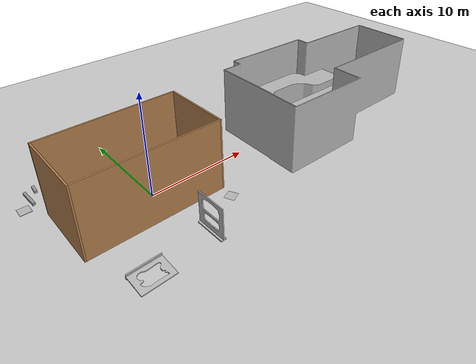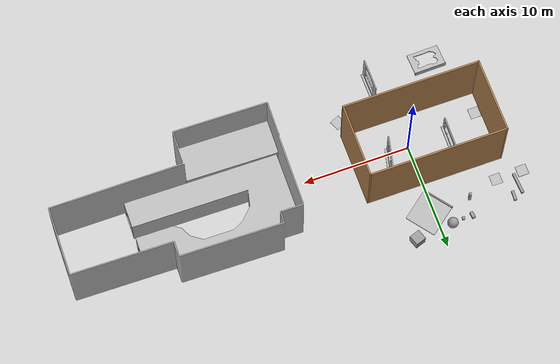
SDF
<sdf version="1.7">
 <world name="default">
  <light name="sun" type="directional">
   <pose>0 0 10 0 -0 0</pose>
   <diffuse>0.8 0.8 0.8 1</diffuse>
   <specular>0.2 0.2 0.2 1</specular>
   <attenuation>
    <range>1000</range>
    <constant>0.9</constant>
    <linear>0.01</linear>
    <quadratic>0.001</quadratic>
   </attenuation>
   <direction>-0.5 0.1 -0.9</direction>
   <spot><inner_angle>0</inner_angle><outer_angle>0</outer_angle><falloff>0</falloff></spot>
  </light>
  <model name="ground_plane">
   <static>1</static>
   <link name="link">
    <collision name="collision">
     <geometry><plane><normal>0 0 1</normal><size>100 100</size></plane></geometry>
     <surface><friction><ode><mu>100</mu><mu2>50</mu2></ode></friction></surface>
    </collision>
    <visual name="visual">
     <cast_shadows>0</cast_shadows>
     <geometry><plane><normal>0 0 1</normal><size>100 100</size></plane></geometry>
     <material>
      <script><uri>file://media/materials/scripts/gazebo.material</uri><name>Gazebo/Grey</name></script>
     </material>
    </visual>
   </link>
  </model>
  <gravity>0 0 -9.8</gravity>
  <magnetic_field>6e-06 2.3e-05 -4.2e-05</magnetic_field>
  <atmosphere type="adiabatic"/>
  <physics name="default_physics" default="0" type="ode">
   <max_step_size>0.001</max_step_size>
   <real_time_factor>1</real_time_factor>
   <real_time_update_rate>1000</real_time_update_rate>
  </physics>
  <scene><ambient>0.4 0.4 0.4 1</ambient><background>0.7 0.7 0.7 1</background><shadows>1</shadows></scene>
  <spherical_coordinates>
   <surface_model>EARTH_WGS84</surface_model>
   <latitude_deg>0</latitude_deg>
   <longitude_deg>0</longitude_deg>
   <elevation>0</elevation>
   <heading_deg>0</heading_deg>
  </spherical_coordinates>
  <model name="h_1">
   <link name="link">
    <pose>0 0 0.115 0 -0 0</pose>
    <inertial>
     <mass>1000</mass>
     <inertia><ixx>1000</ixx><ixy>0</ixy><ixz>0</ixz><iyy>1000</iyy><iyz>0</iyz><izz>1000</izz></inertia>
    </inertial>
    <collision name="collision">
     <geometry><box><size>0.496 0.496 0.01</size></box></geometry>
     <surface>
      <contact>
       <poissons_ratio>0.347</poissons_ratio>
       <elastic_modulus>8.8e+09</elastic_modulus>
       <ode><kp>100000</kp><kd>100</kd><max_vel>100</max_vel><min_depth>0.001</min_depth></ode>
      </contact>
      <friction>
       <torsional>
        <coefficient>1</coefficient>
        <use_patch_radius>0</use_patch_radius>
        <surface_radius>0.01</surface_radius>
       </torsional>
      </friction>
     </surface>
    </collision>
    <visual name="visual">
     <geometry><box><size>1 1 0.05</size></box></geometry>
     <material>
      <script>
       <uri>model://H/materials/scripts</uri>
       <uri>model://H/materials/textures</uri>
       <name>Mark/Diffuse2</name>
      </script>
     </material>
    </visual>
   </link>
   <pose>-8.95845 5.4829 -0.135259 0 -0 0</pose>
  </model>
  <model name="h_1_clone">
   <link name="link">
    <pose>0 0 0.115 0 -0 0</pose>
    <inertial>
     <mass>1000</mass>
     <inertia><ixx>1000</ixx><ixy>0</ixy><ixz>0</ixz><iyy>1000</iyy><iyz>0</iyz><izz>1000</izz></inertia>
    </inertial>
    <collision name="collision">
     <geometry><box><size>0.496 0.496 0.01</size></box></geometry>
     <surface>
      <contact>
       <poissons_ratio>0.347</poissons_ratio>
       <elastic_modulus>8.8e+09</elastic_modulus>
       <ode><kp>100000</kp><kd>100</kd><max_vel>100</max_vel><min_depth>0.001</min_depth></ode>
      </contact>
      <friction>
       <torsional>
        <coefficient>1</coefficient>
        <use_patch_radius>0</use_patch_radius>
        <surface_radius>0.01</surface_radius>
       </torsional>
      </friction>
     </surface>
    </collision>
    <visual name="visual">
     <geometry><box><size>1 1 0.05</size></box></geometry>
     <material>
      <script>
       <uri>model://H/materials/scripts</uri>
       <uri>model://H/materials/textures</uri>
       <name>Mark/Diffuse2</name>
      </script>
     </material>
    </visual>
   </link>
   <pose>0.183791 5.48947 -0.135259 0 -0 0.001493</pose>
  </model>
  <model name="zhuangjiache_0">
   <link name="link">
    <pose>0 0 0.115 0 -0 0</pose>
    <inertial>
     <mass>3.39</mass>
     <inertia><ixx>0.58</ixx><ixy>0</ixy><ixz>0</ixz><iyy>0.58</iyy><iyz>0</iyz><izz>0.19</izz></inertia>
    </inertial>
    <collision name="collision"><geometry><box><size>0.496 0.496 0.01</size></box></geometry></collision>
    <visual name="visual">
     <geometry><box><size>1 1 0.005</size></box></geometry>
     <material>
      <script>
       <uri>model://zhuangjiache/materials/scripts</uri>
       <uri>model://zhuangjiache/materials/textures</uri>
       <name>Mark/Diffuse6</name>
      </script>
     </material>
    </visual>
   </link>
   <pose>-6.96968 -1.24631 -0.11 0 -0 0.002874</pose>
  </model>
  <model name="zhangpeng_0">
   <link name="link">
    <pose>0 0 0.115 0 -0 0</pose>
    <inertial>
     <mass>3.39</mass>
     <inertia><ixx>0.58</ixx><ixy>0</ixy><ixz>0</ixz><iyy>0.58</iyy><iyz>0</iyz><izz>0.19</izz></inertia>
    </inertial>
    <collision name="collision"><geometry><box><size>0.496 0.496 0.005</size></box></geometry></collision>
    <visual name="visual">
     <geometry><box><size>1 1 0.005</size></box></geometry>
     <material>
      <script>
       <uri>model://zhangpeng/materials/scripts</uri>
       <uri>model://zhangpeng/materials/textures</uri>
       <name>Mark/Diffuse5</name>
      </script>
     </material>
    </visual>
   </link>
   <pose>5.10524 -4.53401 0.1175 3.14159 0 -1.1365</pose>
  </model>
  <model name="tanke_0">
   <link name="link">
    <pose>0 0 0.115 0 -0 0</pose>
    <inertial>
     <mass>3.39</mass>
     <inertia><ixx>0.58</ixx><ixy>0</ixy><ixz>0</ixz><iyy>0.58</iyy><iyz>0</iyz><izz>0.19</izz></inertia>
    </inertial>
    <collision name="collision"><geometry><box><size>0.496 0.496 0.005</size></box></geometry></collision>
    <visual name="visual">
     <geometry><box><size>1 1 0.005</size></box></geometry>
     <material>
      <script>
       <uri>model://tanke/materials/scripts</uri>
       <uri>model://tanke/materials/textures</uri>
       <name>Mark/Diffuse4</name>
      </script>
     </material>
    </visual>
   </link>
   <pose>-6.41052 5.49151 -0.1125 0 -0 -0.000981</pose>
  </model>
  <model name="unit_box_1">
   <link name="link">
    <inertial>
     <mass>1</mass>
     <inertia>
      <ixx>0.166667</ixx>
      <ixy>0</ixy>
      <ixz>0</ixz>
      <iyy>0.166667</iyy>
      <iyz>0</iyz>
      <izz>0.166667</izz>
     </inertia>
    </inertial>
    <pose>0.033703 0.185129 -0 0 -0 0</pose>
    <visual name="visual">
     <geometry><box><size>0.25 0.25 1</size></box></geometry>
     <material>
      <lighting>1</lighting>
      <script><uri>file://media/materials/scripts/gazebo.material</uri><name>Gazebo/Grey</name></script>
      <shader type="pixel"><normal_map>__default__</normal_map></shader>
      <ambient>0.3 0.3 0.3 1</ambient>
      <diffuse>0.7 0.7 0.7 1</diffuse>
      <specular>0.01 0.01 0.01 1</specular>
      <emissive>0 0 0 1</emissive>
     </material>
    </visual>
    <collision name="collision">
     <geometry><box><size>0.25 0.25 1</size></box></geometry>
     <surface>
      <friction>
       <ode><mu>1</mu><mu2>1</mu2><fdir1>0 0 0</fdir1><slip1>0</slip1><slip2>0</slip2></ode>
       <torsional>
        <coefficient>1</coefficient>
        <patch_radius>0</patch_radius>
        <surface_radius>0</surface_radius>
        <use_patch_radius>1</use_patch_radius>
        <ode><slip>0</slip></ode>
       </torsional>
      </friction>
      <bounce><restitution_coefficient>0</restitution_coefficient><threshold>1e+06</threshold></bounce>
      <contact>
       <collide_without_contact>0</collide_without_contact>
       <collide_without_contact_bitmask>1</collide_without_contact_bitmask>
       <collide_bitmask>1</collide_bitmask>
       <ode>
        <soft_cfm>0</soft_cfm>
        <soft_erp>0.2</soft_erp>
        <kp>1e+13</kp>
        <kd>1</kd>
        <max_vel>0.01</max_vel>
        <min_depth>0</min_depth>
       </ode>
       <bullet>
        <split_impulse>1</split_impulse>
        <split_impulse_penetration_threshold>-0.01</split_impulse_penetration_threshold>
        <soft_cfm>0</soft_cfm>
        <soft_erp>0.2</soft_erp>
        <kp>1e+13</kp>
        <kd>1</kd>
       </bullet>
      </contact>
     </surface>
    </collision>
   </link>
   <static>0</static>
   <pose>-2.07809 1.74633 0.310129 -1.5708 0 0.113982</pose>
  </model>
  <model name="unit_box_0.6">
   <link name="link">
    <inertial>
     <mass>1</mass>
     <inertia>
      <ixx>0.166667</ixx>
      <ixy>0</ixy>
      <ixz>0</ixz>
      <iyy>0.166667</iyy>
      <iyz>0</iyz>
      <izz>0.166667</izz>
     </inertia>
    </inertial>
    <pose>0.033703 0.185129 -0 0 -0 0</pose>
    <visual name="visual">
     <geometry><box><size>0.3 0.3 0.6</size></box></geometry>
     <material>
      <lighting>1</lighting>
      <script><uri>file://media/materials/scripts/gazebo.material</uri><name>Gazebo/Grey</name></script>
      <shader type="pixel"><normal_map>__default__</normal_map></shader>
      <ambient>0.3 0.3 0.3 1</ambient>
      <diffuse>0.7 0.7 0.7 1</diffuse>
      <specular>0.01 0.01 0.01 1</specular>
      <emissive>0 0 0 1</emissive>
     </material>
    </visual>
    <collision name="collision">
     <geometry><box><size>0.3 0.3 0.6</size></box></geometry>
     <surface>
      <friction>
       <ode><mu>1</mu><mu2>1</mu2><fdir1>0 0 0</fdir1><slip1>0</slip1><slip2>0</slip2></ode>
       <torsional>
        <coefficient>1</coefficient>
        <patch_radius>0</patch_radius>
        <surface_radius>0</surface_radius>
        <use_patch_radius>1</use_patch_radius>
        <ode><slip>0</slip></ode>
       </torsional>
      </friction>
      <bounce><restitution_coefficient>0</restitution_coefficient><threshold>1e+06</threshold></bounce>
      <contact>
       <collide_without_contact>0</collide_without_contact>
       <collide_without_contact_bitmask>1</collide_without_contact_bitmask>
       <collide_bitmask>1</collide_bitmask>
       <ode>
        <soft_cfm>0</soft_cfm>
        <soft_erp>0.2</soft_erp>
        <kp>1e+13</kp>
        <kd>1</kd>
        <max_vel>0.01</max_vel>
        <min_depth>0</min_depth>
       </ode>
       <bullet>
        <split_impulse>1</split_impulse>
        <split_impulse_penetration_threshold>-0.01</split_impulse_penetration_threshold>
        <soft_cfm>0</soft_cfm>
        <soft_erp>0.2</soft_erp>
        <kp>1e+13</kp>
        <kd>1</kd>
       </bullet>
      </contact>
     </surface>
    </collision>
   </link>
   <static>0</static>
   <pose>-3.32439 8.01435 0.183703 -1.6882 1.57079 3.14159</pose>
  </model>
  <model name="unit_box_0.25">
   <link name="link">
    <inertial>
     <mass>1</mass>
     <inertia>
      <ixx>0.166667</ixx>
      <ixy>0</ixy>
      <ixz>0</ixz>
      <iyy>0.166667</iyy>
      <iyz>0</iyz>
      <izz>0.166667</izz>
     </inertia>
    </inertial>
    <pose>0.033703 0.185129 -0 0 -0 0</pose>
    <visual name="visual">
     <geometry><box><size>0.25 0.25 0.25</size></box></geometry>
     <material>
      <lighting>1</lighting>
      <script><uri>file://media/materials/scripts/gazebo.material</uri><name>Gazebo/Grey</name></script>
      <shader type="pixel"><normal_map>__default__</normal_map></shader>
      <ambient>0.3 0.3 0.3 1</ambient>
      <diffuse>0.7 0.7 0.7 1</diffuse>
      <specular>0.01 0.01 0.01 1</specular>
      <emissive>0 0 0 1</emissive>
     </material>
    </visual>
    <collision name="collision">
     <geometry><box><size>0.25 0.25 0.25</size></box></geometry>
     <surface>
      <friction>
       <ode><mu>1</mu><mu2>1</mu2><fdir1>0 0 0</fdir1><slip1>0</slip1><slip2>0</slip2></ode>
       <torsional>
        <coefficient>1</coefficient>
        <patch_radius>0</patch_radius>
        <surface_radius>0</surface_radius>
        <use_patch_radius>1</use_patch_radius>
        <ode><slip>0</slip></ode>
       </torsional>
      </friction>
      <bounce><restitution_coefficient>0</restitution_coefficient><threshold>1e+06</threshold></bounce>
      <contact>
       <collide_without_contact>0</collide_without_contact>
       <collide_without_contact_bitmask>1</collide_without_contact_bitmask>
       <collide_bitmask>1</collide_bitmask>
       <ode>
        <soft_cfm>0</soft_cfm>
        <soft_erp>0.2</soft_erp>
        <kp>1e+13</kp>
        <kd>1</kd>
        <max_vel>0.01</max_vel>
        <min_depth>0</min_depth>
       </ode>
       <bullet>
        <split_impulse>1</split_impulse>
        <split_impulse_penetration_threshold>-0.01</split_impulse_penetration_threshold>
        <soft_cfm>0</soft_cfm>
        <soft_erp>0.2</soft_erp>
        <kp>1e+13</kp>
        <kd>1</kd>
       </bullet>
      </contact>
     </surface>
    </collision>
   </link>
   <static>0</static>
   <pose>-2.33176 7.86057 0.125 0 -0 -0.156402</pose>
  </model>
  <model name="unit_box_2">
   <link name="link">
    <inertial>
     <mass>1</mass>
     <inertia>
      <ixx>0.166667</ixx>
      <ixy>0</ixy>
      <ixz>0</ixz>
      <iyy>0.166667</iyy>
      <iyz>0</iyz>
      <izz>0.166667</izz>
     </inertia>
    </inertial>
    <pose>0.033703 0.185129 -0 0 -0 0</pose>
    <visual name="visual">
     <geometry><box><size>0.25 0.25 2</size></box></geometry>
     <material>
      <lighting>1</lighting>
      <script><uri>file://media/materials/scripts/gazebo.material</uri><name>Gazebo/Grey</name></script>
      <shader type="pixel"><normal_map>__default__</normal_map></shader>
      <ambient>0.3 0.3 0.3 1</ambient>
      <diffuse>0.7 0.7 0.7 1</diffuse>
      <specular>0.01 0.01 0.01 1</specular>
      <emissive>0 0 0 1</emissive>
     </material>
    </visual>
    <collision name="collision">
     <geometry><box><size>0.25 0.25 2</size></box></geometry>
     <surface>
      <friction>
       <ode><mu>1</mu><mu2>1</mu2><fdir1>0 0 0</fdir1><slip1>0</slip1><slip2>0</slip2></ode>
       <torsional>
        <coefficient>1</coefficient>
        <patch_radius>0</patch_radius>
        <surface_radius>0</surface_radius>
        <use_patch_radius>1</use_patch_radius>
        <ode><slip>0</slip></ode>
       </torsional>
      </friction>
      <bounce><restitution_coefficient>0</restitution_coefficient><threshold>1e+06</threshold></bounce>
      <contact>
       <collide_without_contact>0</collide_without_contact>
       <collide_without_contact_bitmask>1</collide_without_contact_bitmask>
       <collide_bitmask>1</collide_bitmask>
       <ode>
        <soft_cfm>0</soft_cfm>
        <soft_erp>0.2</soft_erp>
        <kp>1e+13</kp>
        <kd>1</kd>
        <max_vel>0.01</max_vel>
        <min_depth>0</min_depth>
       </ode>
       <bullet>
        <split_impulse>1</split_impulse>
        <split_impulse_penetration_threshold>-0.01</split_impulse_penetration_threshold>
        <soft_cfm>0</soft_cfm>
        <soft_erp>0.2</soft_erp>
        <kp>1e+13</kp>
        <kd>1</kd>
       </bullet>
      </contact>
     </surface>
    </collision>
   </link>
   <static>0</static>
   <pose>-7.9507 6.58267 0.158643 0.002654 1.57074 1.63369</pose>
  </model>
  <model name="unit_box_0.9">
   <link name="link">
    <inertial>
     <mass>1</mass>
     <inertia>
      <ixx>0.166667</ixx>
      <ixy>0</ixy>
      <ixz>0</ixz>
      <iyy>0.166667</iyy>
      <iyz>0</iyz>
      <izz>0.166667</izz>
     </inertia>
    </inertial>
    <pose>0.033703 0.185129 -0 0 -0 0</pose>
    <visual name="visual">
     <geometry><box><size>0.25 0.25 0.9</size></box></geometry>
     <material>
      <lighting>1</lighting>
      <script><uri>file://media/materials/scripts/gazebo.material</uri><name>Gazebo/Grey</name></script>
      <shader type="pixel"><normal_map>__default__</normal_map></shader>
      <ambient>0.3 0.3 0.3 1</ambient>
      <diffuse>0.7 0.7 0.7 1</diffuse>
      <specular>0.01 0.01 0.01 1</specular>
      <emissive>0 0 0 1</emissive>
     </material>
    </visual>
    <collision name="collision">
     <geometry><box><size>0.25 0.25 0.9</size></box></geometry>
     <surface>
      <friction>
       <ode><mu>1</mu><mu2>1</mu2><fdir1>0 0 0</fdir1><slip1>0</slip1><slip2>0</slip2></ode>
       <torsional>
        <coefficient>1</coefficient>
        <patch_radius>0</patch_radius>
        <surface_radius>0</surface_radius>
        <use_patch_radius>1</use_patch_radius>
        <ode><slip>0</slip></ode>
       </torsional>
      </friction>
      <bounce><restitution_coefficient>0</restitution_coefficient><threshold>1e+06</threshold></bounce>
      <contact>
       <collide_without_contact>0</collide_without_contact>
       <collide_without_contact_bitmask>1</collide_without_contact_bitmask>
       <collide_bitmask>1</collide_bitmask>
       <ode>
        <soft_cfm>0</soft_cfm>
        <soft_erp>0.2</soft_erp>
        <kp>1e+13</kp>
        <kd>1</kd>
        <max_vel>0.01</max_vel>
        <min_depth>0</min_depth>
       </ode>
       <bullet>
        <split_impulse>1</split_impulse>
        <split_impulse_penetration_threshold>-0.01</split_impulse_penetration_threshold>
        <soft_cfm>0</soft_cfm>
        <soft_erp>0.2</soft_erp>
        <kp>1e+13</kp>
        <kd>1</kd>
       </bullet>
      </contact>
     </surface>
    </collision>
   </link>
   <static>0</static>
   <pose>-7.38119 7.56237 0.310129 -1.5708 -0 -0.065155</pose>
  </model>
  <model name="unit_box_1.2">
   <link name="link">
    <inertial>
     <mass>1</mass>
     <inertia>
      <ixx>0.166667</ixx>
      <ixy>0</ixy>
      <ixz>0</ixz>
      <iyy>0.166667</iyy>
      <iyz>0</iyz>
      <izz>0.166667</izz>
     </inertia>
    </inertial>
    <pose>0.033703 0.185129 -0 0 -0 0</pose>
    <visual name="visual">
     <geometry><box><size>0.25 0.25 1.2</size></box></geometry>
     <material>
      <lighting>1</lighting>
      <script><uri>file://media/materials/scripts/gazebo.material</uri><name>Gazebo/Grey</name></script>
      <shader type="pixel"><normal_map>__default__</normal_map></shader>
      <ambient>0.3 0.3 0.3 1</ambient>
      <diffuse>0.7 0.7 0.7 1</diffuse>
      <specular>0.01 0.01 0.01 1</specular>
      <emissive>0 0 0 1</emissive>
     </material>
    </visual>
    <collision name="collision">
     <geometry><box><size>0.25 0.25 1.2</size></box></geometry>
     <surface>
      <friction>
       <ode><mu>1</mu><mu2>1</mu2><fdir1>0 0 0</fdir1><slip1>0</slip1><slip2>0</slip2></ode>
       <torsional>
        <coefficient>1</coefficient>
        <patch_radius>0</patch_radius>
        <surface_radius>0</surface_radius>
        <use_patch_radius>1</use_patch_radius>
        <ode><slip>0</slip></ode>
       </torsional>
      </friction>
      <bounce><restitution_coefficient>0</restitution_coefficient><threshold>1e+06</threshold></bounce>
      <contact>
       <collide_without_contact>0</collide_without_contact>
       <collide_without_contact_bitmask>1</collide_without_contact_bitmask>
       <collide_bitmask>1</collide_bitmask>
       <ode>
        <soft_cfm>0</soft_cfm>
        <soft_erp>0.2</soft_erp>
        <kp>1e+13</kp>
        <kd>1</kd>
        <max_vel>0.01</max_vel>
        <min_depth>0</min_depth>
       </ode>
       <bullet>
        <split_impulse>1</split_impulse>
        <split_impulse_penetration_threshold>-0.01</split_impulse_penetration_threshold>
        <soft_cfm>0</soft_cfm>
        <soft_erp>0.2</soft_erp>
        <kp>1e+13</kp>
        <kd>1</kd>
       </bullet>
      </contact>
     </surface>
    </collision>
   </link>
   <static>0</static>
   <pose>-3.58847 6.26603 0.599999 2e-06 -1e-06 -0.403849</pose>
  </model>
  <model name="unit_box">
   <pose>2.39384 8.61323 0.5 0 -0 0.329105</pose>
   <link name="link">
    <inertial>
     <mass>1</mass>
     <inertia>
      <ixx>0.166667</ixx>
      <ixy>0</ixy>
      <ixz>0</ixz>
      <iyy>0.166667</iyy>
      <iyz>0</iyz>
      <izz>0.166667</izz>
     </inertia>
    </inertial>
    <collision name="collision"><geometry><box><size>1 1 1</size></box></geometry></collision>
    <visual name="visual">
     <geometry><box><size>1 1 1</size></box></geometry>
     <material>
      <script><name>Gazebo/Grey</name><uri>file://media/materials/scripts/gazebo.material</uri></script>
     </material>
    </visual>
   </link>
  </model>
  <model name="unit_sphere">
   <pose>-1.15301 8.22042 0.5 -0.009023 -0.033424 0.000236</pose>
   <link name="link">
    <inertial>
     <mass>1</mass>
     <inertia><ixx>0.1</ixx><ixy>0</ixy><ixz>0</ixz><iyy>0.1</iyy><iyz>0</iyz><izz>0.1</izz></inertia>
    </inertial>
    <collision name="collision"><geometry><sphere><radius>0.5</radius></sphere></geometry></collision>
    <visual name="visual">
     <geometry><sphere><radius>0.5</radius></sphere></geometry>
     <material>
      <script><name>Gazebo/Grey</name><uri>file://media/materials/scripts/gazebo.material</uri></script>
     </material>
    </visual>
   </link>
  </model>
  <light name="user_point_light_0" type="point">
   <pose>-7.02428 -0.880974 1 0 -0 0</pose>
   <diffuse>0.5 0.5 0.5 1</diffuse>
   <specular>0.1 0.1 0.1 1</specular>
   <attenuation>
    <range>20</range>
    <constant>0.5</constant>
    <linear>0.01</linear>
    <quadratic>0.001</quadratic>
   </attenuation>
   <cast_shadows>0</cast_shadows>
   <direction>0 0 -1</direction>
   <spot><inner_angle>0</inner_angle><outer_angle>0</outer_angle><falloff>0</falloff></spot>
  </light>
  <model name="forest_wall_4">
   <link name="base_link">
    <inertial>
     <pose>-0.029337 -0.424347 -1e-06 0 -0 0</pose>
     <mass>647.061</mass>
     <inertia>
      <ixx>742.831</ixx>
      <ixy>5.41938</ixy>
      <ixz>6.93604e-05</ixz>
      <iyy>660.845</iyy>
      <iyz>-2.85535e-06</iyz>
      <izz>1396.59</izz>
     </inertia>
    </inertial>
    <collision name="base_link_collision">
     <geometry>
      <mesh>
       <scale>1 1 1</scale>
       <uri>/home/emnavi/X280_SIM/src/emnv_scene/urdf_models/emnv_scene/urdf_models/forest_wall_4/meshes/forest_wall_4.STL</uri>
      </mesh>
     </geometry>
    </collision>
    <visual name="base_link_visual">
     <geometry>
      <mesh>
       <scale>1 1 1</scale>
       <uri>/home/emnavi/X280_SIM/src/emnv_scene/urdf_models/emnv_scene/urdf_models/forest_wall_4/meshes/forest_wall_4.STL</uri>
      </mesh>
     </geometry>
    </visual>
   </link>
   <pose>1.23568 -6.80695 1.60323 1.5708 -2e-06 -1.56513</pose>
  </model>
  <model name="forest_wall_2">
   <link name="base_link">
    <inertial>
     <pose>0.016227 -0.321553 -1e-06 0 -0 0</pose>
     <mass>518.159</mass>
     <inertia>
      <ixx>286.486</ixx>
      <ixy>0.468665</ixy>
      <ixz>-0.000501762</ixz>
      <iyy>499.819</iyy>
      <iyz>-2.32059e-05</iyz>
      <izz>779.442</izz>
     </inertia>
    </inertial>
    <collision name="base_link_collision">
     <geometry>
      <mesh>
       <scale>1 1 1</scale>
       <uri>/home/emnavi/X280_SIM/src/emnv_scene/urdf_models/emnv_scene/urdf_models/forest_wall_2/meshes/forest_wall_2.STL</uri>
      </mesh>
     </geometry>
    </collision>
    <visual name="base_link_visual">
     <geometry>
      <mesh>
       <scale>1 1 1</scale>
       <uri>/home/emnavi/X280_SIM/src/emnv_scene/urdf_models/emnv_scene/urdf_models/forest_wall_2/meshes/forest_wall_2.STL</uri>
      </mesh>
     </geometry>
    </visual>
   </link>
   <pose>-4.69144 -7.67155 0.147842 -3.04192 4e-06 0.019172</pose>
  </model>
  <model name="forest_wall_3">
   <link name="base_link">
    <inertial>
     <pose>0.010164 -0.34575 2e-06 0 -0 0</pose>
     <mass>740.131</mass>
     <inertia>
      <ixx>822.275</ixx>
      <ixy>-11.652</ixy>
      <ixz>-0.00103137</ixz>
      <iyy>718.053</iyy>
      <iyz>-0.000275443</iyz>
      <izz>1533.13</izz>
     </inertia>
    </inertial>
    <collision name="base_link_collision">
     <geometry>
      <mesh>
       <scale>1 1 1</scale>
       <uri>/home/emnavi/X280_SIM/src/emnv_scene/urdf_models/emnv_scene/urdf_models/forest_wall_3/meshes/forest_wall_3.STL</uri>
      </mesh>
     </geometry>
    </collision>
    <visual name="base_link_visual">
     <geometry>
      <mesh>
       <scale>1 1 1</scale>
       <uri>/home/emnavi/X280_SIM/src/emnv_scene/urdf_models/emnv_scene/urdf_models/forest_wall_3/meshes/forest_wall_3.STL</uri>
      </mesh>
     </geometry>
    </visual>
   </link>
   <pose>2.1275 0.844944 1.59488 1.5708 2e-06 1.34359</pose>
  </model>
  <model name="forest_wall_5">
   <link name="base_link">
    <inertial>
     <pose>-0 0 -0.221429 0 -0 0</pose>
     <mass>1050</mass>
     <inertia>
      <ixx>987.893</ixx>
      <ixy>6.80012e-15</ixy>
      <ixz>1.6007e-13</ixz>
      <iyy>1771.52</iyy>
      <iyz>-3.10446e-14</iyz>
      <izz>791.375</izz>
     </inertia>
    </inertial>
    <collision name="base_link_collision">
     <geometry>
      <mesh>
       <scale>1 1 1</scale>
       <uri>/home/emnavi/X280_SIM/src/emnv_scene/urdf_models/emnv_scene/urdf_models/forest_wall_5/meshes/forest_wall_5.STL</uri>
      </mesh>
     </geometry>
    </collision>
    <visual name="base_link_visual">
     <geometry>
      <mesh>
       <scale>1 1 1</scale>
       <uri>/home/emnavi/X280_SIM/src/emnv_scene/urdf_models/emnv_scene/urdf_models/forest_wall_5/meshes/forest_wall_5.STL</uri>
      </mesh>
     </geometry>
    </visual>
   </link>
   <pose>0.486142 6.53493 0.149662 -1.63736 -0 -0.92011</pose>
  </model>
  <model name="forest_wall_1">
   <link name="base_link">
    <inertial>
     <pose>0.016227 -0.321553 -1e-06 0 -0 0</pose>
     <mass>518.159</mass>
     <inertia>
      <ixx>286.486</ixx>
      <ixy>0.468665</ixy>
      <ixz>-0.000501762</ixz>
      <iyy>499.819</iyy>
      <iyz>-2.32059e-05</iyz>
      <izz>779.442</izz>
     </inertia>
    </inertial>
    <collision name="base_link_collision">
     <geometry>
      <mesh>
       <scale>1 1 1</scale>
       <uri>/home/emnavi/X280_SIM/src/emnv_scene/urdf_models/emnv_scene/urdf_models/forest_wall_1/meshes/forest_wall_1.STL</uri>
      </mesh>
     </geometry>
    </collision>
    <visual name="base_link_visual">
     <geometry>
      <mesh>
       <scale>1 1 1</scale>
       <uri>/home/emnavi/X280_SIM/src/emnv_scene/urdf_models/emnv_scene/urdf_models/forest_wall_1/meshes/forest_wall_1.STL</uri>
      </mesh>
     </geometry>
    </visual>
   </link>
   <pose>-3.78041 0.535957 1.08934 1.5708 -0 1.54771</pose>
  </model>
  <model name="forst_tju_walls">
   <link name="Wall_1">
    <collision name="Wall_1_Collision">
     <geometry><box><size>7 0.15 7</size></box></geometry>
     <pose>0 0 3.5 0 -0 0</pose>
    </collision>
    <visual name="Wall_1_Visual">
     <pose>0 0 3.5 0 -0 0</pose>
     <geometry><box><size>7 0.15 7</size></box></geometry>
     <material>
      <script><uri>file://media/materials/scripts/gazebo.material</uri><name>Gazebo/Wood</name></script>
      <ambient>1 1 1 1</ambient>
     </material>
     <meta><layer>0</layer></meta>
    </visual>
    <pose>-7.5815 0.246991 0 0 -0 -1.5708</pose>
   </link>
   <link name="Wall_3">
    <collision name="Wall_3_Collision">
     <geometry><box><size>13 0.15 7</size></box></geometry>
     <pose>0 0 3.5 0 -0 0</pose>
    </collision>
    <visual name="Wall_3_Visual">
     <pose>0 0 3.5 0 -0 0</pose>
     <geometry><box><size>13 0.15 7</size></box></geometry>
     <material>
      <script><uri>file://media/materials/scripts/gazebo.material</uri><name>Gazebo/Wood</name></script>
      <ambient>1 1 1 1</ambient>
     </material>
     <meta><layer>0</layer></meta>
    </visual>
    <pose>-1.1565 -3.17801 0 0 -0 0</pose>
   </link>
   <link name="Wall_5">
    <collision name="Wall_5_Collision">
     <geometry><box><size>13 0.15 7</size></box></geometry>
     <pose>0 0 3.5 0 -0 0</pose>
    </collision>
    <visual name="Wall_5_Visual">
     <pose>0 0 3.5 0 -0 0</pose>
     <geometry><box><size>13 0.15 7</size></box></geometry>
     <material>
      <script><uri>file://media/materials/scripts/gazebo.material</uri><name>Gazebo/Wood</name></script>
      <ambient>1 1 1 1</ambient>
     </material>
     <meta><layer>0</layer></meta>
    </visual>
    <pose>-1.1565 3.67199 0 0 -0 0</pose>
   </link>
   <link name="Wall_7">
    <collision name="Wall_7_Collision">
     <geometry><box><size>7.00004 0.15 7</size></box></geometry>
     <pose>0 0 3.5 0 -0 0</pose>
    </collision>
    <visual name="Wall_7_Visual">
     <pose>0 0 3.5 0 -0 0</pose>
     <geometry><box><size>7.00004 0.15 7</size></box></geometry>
     <material>
      <script><uri>file://media/materials/scripts/gazebo.material</uri><name>Gazebo/Wood</name></script>
      <ambient>1 1 1 1</ambient>
     </material>
     <meta><layer>0</layer></meta>
    </visual>
    <pose>5.2685 0.246991 0 0 -0 -1.5708</pose>
   </link>
   <static>1</static>
  </model>
  <model name="suidao">
   <link name="base_link">
    <inertial>
     <pose>0.825648 -7.4509 2.4e-05 0 -0 0</pose>
     <mass>19270.2</mass>
     <inertia>
      <ixx>364851</ixx>
      <ixy>-7673.35</ixy>
      <ixz>1.85435</ixz>
      <iyy>102937</iyy>
      <iyz>2.76396</iyz>
      <izz>450342</izz>
     </inertia>
    </inertial>
    <collision name="base_link_collision">
     <geometry>
      <mesh>
       <scale>1 1 1</scale>
       <uri>/home/emnavi/X280_SIM/src/emnv_scene/urdf_models/emnv_scene/urdf_models/suidao/meshes/suidao.STL</uri>
      </mesh>
     </geometry>
    </collision>
    <visual name="base_link_visual">
     <geometry>
      <mesh>
       <scale>1 1 1</scale>
       <uri>/home/emnavi/X280_SIM/src/emnv_scene/urdf_models/emnv_scene/urdf_models/suidao/meshes/suidao.STL</uri>
      </mesh>
     </geometry>
    </visual>
   </link>
   <pose>26.1979 2.13301 0.999998 -0 2e-06 -1.58302</pose>
  </model>
  <model name="suidao_wall">
   <link name="base_link">
    <inertial>
     <pose>2.94322 -5.85204 8.58865 0 -0 0</pose>
     <mass>56543.9</mass>
     <inertia>
      <ixx>2.98258e+06</ixx>
      <ixy>386983</ixy>
      <ixz>79146.4</ixz>
      <iyy>1.16875e+06</iyy>
      <iyz>-96906.3</iyz>
      <izz>3.67936e+06</izz>
     </inertia>
    </inertial>
    <collision name="base_link_collision">
     <geometry>
      <mesh>
       <scale>1 1 1</scale>
       <uri>/home/emnavi/X280_SIM/src/emnv_scene/urdf_models/suidao_wall/meshes/suidao_wall.STL</uri>
      </mesh>
     </geometry>
    </collision>
    <visual name="base_link_visual">
     <geometry>
      <mesh>
       <scale>1 1 1</scale>
       <uri>/home/emnavi/X280_SIM/src/emnv_scene/urdf_models/suidao_wall/meshes/suidao_wall.STL</uri>
      </mesh>
     </geometry>
    </visual>
   </link>
   <pose>26.164 1.94878 -5.5 0 -0 -1.59001</pose>
  </model>
 </world>
</sdf>
